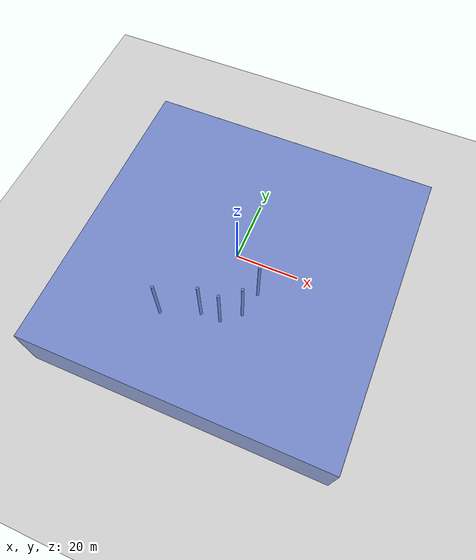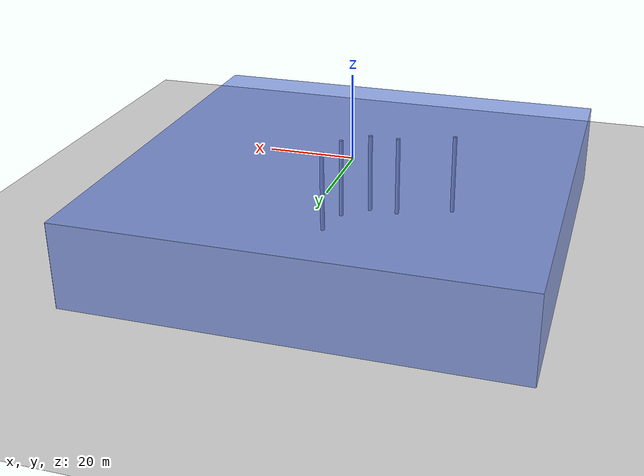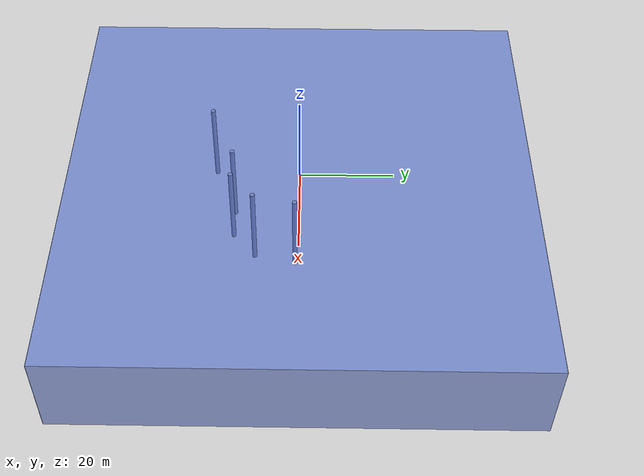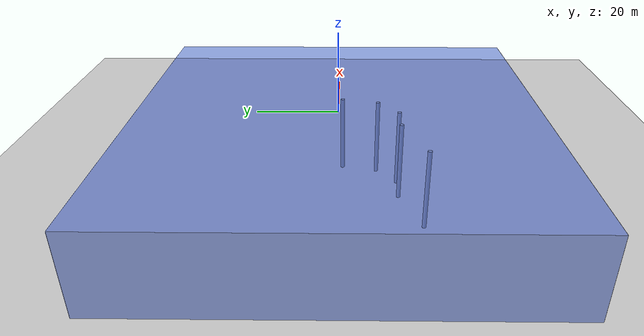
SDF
<?xml version="1.0" ?>
<sdf version="1.5">
<world name="default">
    <gui>
      <camera name="user_camera">
        <pose>10 11 10 0 0 -2.356</pose>
      </camera>
    </gui>

    <scene>
      <ambient> 0.25 0.3 0.5 1</ambient>
      <grid>false</grid>
    </scene>

    <light type="directional" name="sun">
      <cast_shadows>true</cast_shadows>
      <pose>0 0 100 0 0 0</pose>
      <diffuse>0.8 0.8 0.8 1</diffuse>
      <specular>0.2 0.2 0.2 1</specular>
      <attenuation>
        <range>1000</range>
        <constant>0.9</constant>
        <linear>0.01</linear>
        <quadratic>0.001</quadratic>
      </attenuation>
      <direction>-0.5 0.1 -0.9</direction>
    </light>

    <model name="ground_plane">
      <pose>0 0 -20 0 0 0</pose>
      <static>true</static>
      <link name="link">
        <collision name="collision">
          <geometry>
            <plane>
              <normal>0 0 1</normal>
              <size>100 100</size>
            </plane>
          </geometry>
          <surface>
            <contact>
              <collide_bitmask>0xffff</collide_bitmask>
            </contact>
            <friction>
              <ode>
                <mu>100</mu>
                <mu2>50</mu2>
              </ode>
            </friction>
          </surface>
        </collision>
        <visual name="visual">
          <cast_shadows>false</cast_shadows>
          <geometry>
            <plane>
              <normal>0 0 1</normal>
              <size>100 100</size>
            </plane>
          </geometry>
          <material>
            <script>
              <uri>file://media/materials/scripts/gazebo.material</uri>
              <name>Gazebo/Grey</name>
            </script>
          </material>
        </visual>
      </link>
    </model>

    <model name="ceiling_plane">
      <static>true</static>
      <pose>0 0 0 0 0 0</pose>
      <link name="link">
        <visual name="visual">
          <cast_shadows>false</cast_shadows>
          <geometry>
            <box>
              <size>100 100 .1</size>
            </box>
          </geometry>
          <material>
            <script>
              <uri>file://media/materials/scripts/gazebo.material</uri>
              <name>Gazebo/BlueTransparent</name>
            </script>
          </material>
        </visual>

        <visual name="visual_sideA">
          <pose>50.05 0 -10 0 0 0</pose>
          <cast_shadows>false</cast_shadows>
          <geometry>
            <box>
              <size>0.1 100 19.9</size>
            </box>
          </geometry>
          <material>
            <script>
              <uri>file://media/materials/scripts/gazebo.material</uri>
              <name>Gazebo/BlueTransparent</name>
            </script>
          </material>
        </visual>

        <visual name="visual_sideB">
          <pose>-50.05 0 -10 0 0 0</pose>
          <cast_shadows>false</cast_shadows>
          <geometry>
            <box>
              <size>0.1 100 19.9</size>
            </box>
          </geometry>
          <material>
            <script>
              <uri>file://media/materials/scripts/gazebo.material</uri>
              <name>Gazebo/BlueTransparent</name>
            </script>
          </material>
        </visual>

        <visual name="visual_sideC">
          <pose>0 50.05 -10 0 0 0</pose>
          <cast_shadows>false</cast_shadows>
          <geometry>
            <box>
              <size>100 0.1 19.9</size>
            </box>
          </geometry>
          <material>
            <script>
              <uri>file://media/materials/scripts/gazebo.material</uri>
              <name>Gazebo/BlueTransparent</name>
            </script>
          </material>
        </visual>

        <visual name="visual_sideD">
          <pose>0 -50.05 -10 0 0 0</pose>
          <cast_shadows>false</cast_shadows>
          <geometry>
            <box>
              <size>100 0.1 19.9</size>
            </box>
          </geometry>
          <material>
            <script>
              <uri>file://media/materials/scripts/gazebo.material</uri>
              <name>Gazebo/BlueTransparent</name>
            </script>
          </material>
        </visual>

        <visual name = "obstacle1">
          <pose>6 -10 -10 0 0 0 0</pose>

          <origin>0 0 0</origin>
          <cast_shadows>false</cast_shadows>
          <geometry>
            <cylinder>
              <radius>0.5</radius>
              <length>20</length>
            </cylinder>
          </geometry>
          <material>
            <color rgba = "255 0 0 255"/>
          </material>
        </visual>
        <collision name="collision_obstacle1">
          <geometry>
            <cylinder>
              <radius>0.5</radius>
              <length>20</length>
            </cylinder>
          </geometry>
        </collision>

        <visual name = "obstacle2">
          <pose>8 -1 -10 0 0 0</pose>

          <origin>0 0 0</origin>
          <cast_shadows>false</cast_shadows>
          <geometry>
            <cylinder>
              <radius>0.5</radius>
              <length>20</length>
            </cylinder>
          </geometry>
          <material>
            <color rgba = "255 0 0 255"/>
          </material>
        </visual>
        <collision name="collision_obstacle2">
          <geometry>
            <cylinder>
              <radius>0.5</radius>
              <length>20</length>
            </cylinder>
          </geometry>
        </collision>

        <visual name = "obstacle3">
          <pose>0 -15 -10 0 0 0</pose>
          <origin>0 0 0</origin>
          <cast_shadows>false</cast_shadows>
          <geometry>
            <cylinder>
              <radius>0.5</radius>
              <length>20</length>
            </cylinder>
          </geometry>
          <material name = "obstacle-red">
            <color rgba = "255 0 0 255"/>
          </material>
        </visual>
        <collision name="collision_obstacle3">
          <geometry>
            <cylinder>
              <radius>0.5</radius>
              <length>20</length>
            </cylinder>
          </geometry>
        </collision>

        <visual name = "obstacle4">
          <pose>-7 -15 -10 0 0 0</pose>
          <origin>0 0 0</origin>
          <cast_shadows>false</cast_shadows>
          <geometry>
            <cylinder>
              <radius>0.5</radius>
              <length>20</length>
            </cylinder>
          </geometry>
          <material>
            <color rgba = "255 0 0 255"/>
          </material>
        </visual>
        <collision name="collision_obstacle4">
          <geometry>
            <cylinder>
              <radius>0.5</radius>
              <length>20</length>
            </cylinder>
          </geometry>
        </collision>

        <visual name = "obstacle5">
          <pose>-20 -20 -10 0 0 0</pose>
          <origin>0 0 0</origin>
          <cast_shadows>false</cast_shadows>
          <geometry>
            <cylinder>
              <radius>0.5</radius>
              <length>20</length>
            </cylinder>
          </geometry>
          <material name = "obstacle-red">
            <color rgba = "255 0 0 255"/>
          </material>
        </visual>
        <collision name="collision_obstacle5">
          <geometry>
            <cylinder>
              <radius>0.5</radius>
              <length>20</length>
            </cylinder>
          </geometry>
        </collision>

      </link>
    </model>

    <physics type='ode'>
      <real_time_factor>1</real_time_factor>
      <real_time_update_rate>1000</real_time_update_rate>
      <max_step_size>0.001</max_step_size>
      <real_time_factor>1</real_time_factor>
      <real_time_update_rate>1000.0</real_time_update_rate>
      <gravity>0 0 -9.81</gravity>
      <hydrodynamics>true</hydrodynamics>
      <viscosity>
        <dynamic_viscosity>1e-6</dynamic_viscosity>
        <kinematic_viscosity>1e-6</kinematic_viscosity>
      </viscosity>
    </physics>

  </world>
</sdf>
